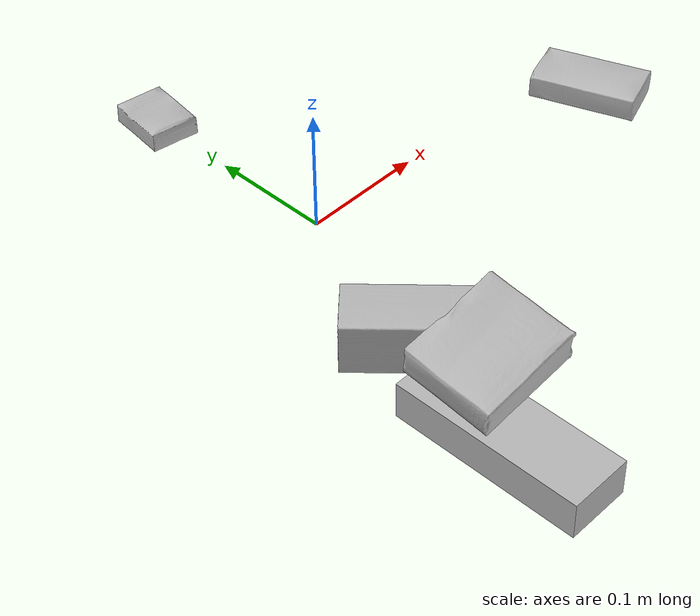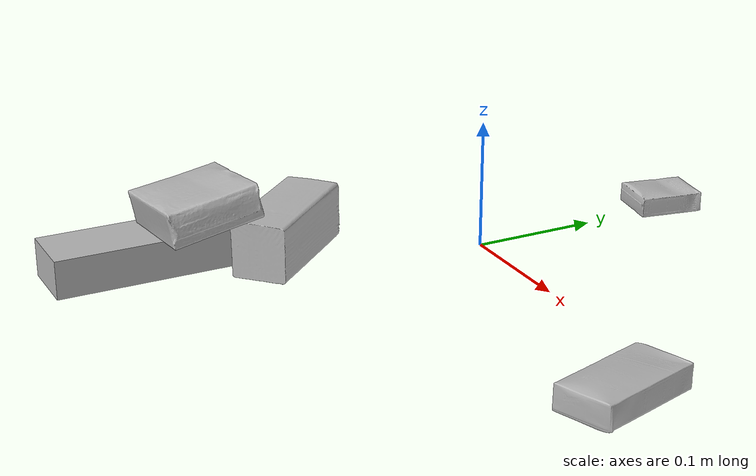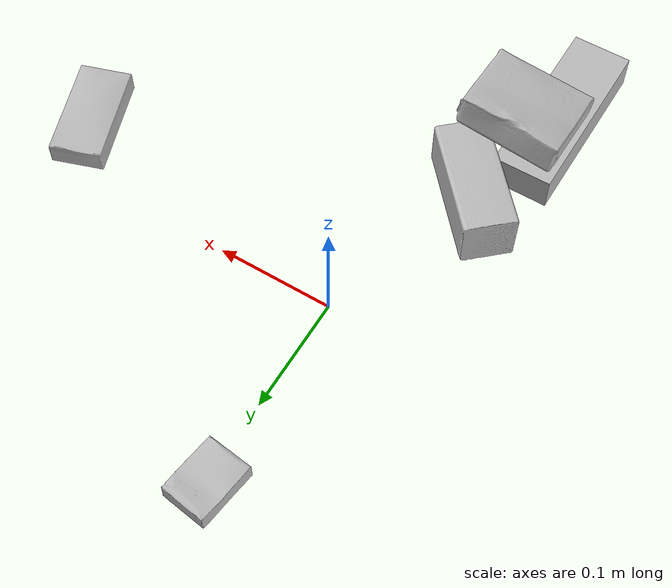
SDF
<sdf version="1.4">
  <world name="default">
    <light name="light1" type="point">
      <pose>0 0 1 0 0 0</pose>
      <diffuse>3 3 3 1</diffuse>
      <specular>3 3 3 1</specular>
    </light>
    <light name="light2" type="point">
      <pose>0 0.5 2 0 0 0</pose>
      <diffuse>1 1 1 1</diffuse>
      <specular>1 1 1 1</specular>
    </light>
    <light name="light3" type="point">
      <pose>0 0.5 2 0 0 0</pose>
      <diffuse>3 3 3 1</diffuse>
      <specular>3 3 3 1</specular>
    </light>
    <scene>
      <ambient>0.7 0.7 0.7</ambient>
    </scene>
    <model name="box1">
      <link name="link_box1">
        <collision name="default">
          <geometry>
            <mesh>
              <uri>model://sugar_box/collision_meshes/collision.obj</uri>
              <scale>0.5 0.5 0.5</scale>
            </mesh>
          </geometry>
          <surface>
            <friction>
              <ode>
                <mu>0.5</mu>
                <mu2>0.5</mu2>
              </ode>
            </friction>
          <contact>
        <ode>
            <max_vel>0</max_vel>
            <min_depth>0.0001</min_depth>
            <kp>1e8</kp>
        </ode>
    </contact></surface>
        </collision>
        <visual name="default">
          <geometry>
            <mesh>
              <uri>model://sugar_box/visual_meshes/visual.dae</uri>
              <scale>0.5 0.5 0.5</scale>
            </mesh>
          </geometry>
        </visual>
        <inertial>
          <mass>0.05016465485095978</mass>
          <pose>0.0005171863595023751 1.924554817378521e-05 -0.0001818240125430748 -0.00040462615463102695 0.0010506635220671036 0.0026153792546614123</pose>
          <inertia>
            <ixx>1.0449262e-05</ixx>
            <iyy>3.3774166e-05</iyy>
            <izz>4.0431696e-05</izz>
            <ixy>0</ixy>
            <ixz>0</ixz>
            <iyz>0</iyz>
          </inertia>
        </inertial>
      </link>
      <pose>0.26227959990501404 -0.0482139028608799 0.011399305425584316 0.0007753439793438909 -0.023432475727171685 -1.2511528990438212</pose>
    </model>
    <model name="box2">
      <link name="link_box2">
        <collision name="default">
          <geometry>
            <mesh>
              <uri>model://cracker_box/collision_meshes/collision.obj</uri>
              <scale>0.25 0.25 0.25</scale>
            </mesh>
          </geometry>
          <surface>
            <friction>
              <ode>
                <mu>0.5</mu>
                <mu2>0.5</mu2>
              </ode>
            </friction>
          <contact>
        <ode>
            <max_vel>0</max_vel>
            <min_depth>0.0001</min_depth>
            <kp>1e8</kp>
        </ode>
    </contact></surface>
        </collision>
        <visual name="default">
          <geometry>
            <mesh>
              <uri>model://cracker_box/visual_meshes/visual.dae</uri>
              <scale>0.25 0.25 0.25</scale>
            </mesh>
          </geometry>
        </visual>
        <inertial>
          <mass>0.05325852707028389</mass>
          <pose>0.0002366033149883151 6.358561950037256e-05 -0.0004257383698131889 -0.000316207624135088 -0.011106486806293444 0.0025467950014945295</pose>
          <inertia>
            <ixx>8.46662e-06</ixx>
            <iyy>1.3980052e-05</iyy>
            <izz>1.995082e-05</izz>
            <ixy>0</ixy>
            <ixz>0</ixz>
            <iyz>0</iyz>
          </inertia>
        </inertial>
      </link>
      <pose>-0.0034898249432444572 0.1730700433254242 0.009096028283238411 -0.014050577030836576 -0.005016663719638618 -1.7171412509025765</pose>
    </model>
    <model name="box3">
      <link name="link_box3">
        <collision name="default">
          <geometry>
            <mesh>
              <uri>model://wood_block/collision_meshes/collision.obj</uri>
              <scale>0.5 0.5 0.5</scale>
            </mesh>
          </geometry>
          <surface>
            <friction>
              <ode>
                <mu>0.5</mu>
                <mu2>0.5</mu2>
              </ode>
            </friction>
          <contact>
        <ode>
            <max_vel>0</max_vel>
            <min_depth>0.0001</min_depth>
            <kp>1e8</kp>
        </ode>
    </contact></surface>
        </collision>
        <visual name="default">
          <geometry>
            <mesh>
              <uri>model://wood_block/visual_meshes/visual.dae</uri>
              <scale>0.5 0.5 0.5</scale>
            </mesh>
          </geometry>
        </visual>
        <inertial>
          <mass>0.24977724254131317</mass>
          <pose>-2.9066577553749084e-06 -0.00028540476341731846 0.00013204291462898254 -0.05220975529066727 -0.005192695547513155 -0.006861377927637377</pose>
          <inertia>
            <ixx>8.355995e-05</ixx>
            <iyy>0.00026396586</iyy>
            <izz>0.00026297852</izz>
            <ixy>0</ixy>
            <ixz>0</ixz>
            <iyz>0</iyz>
          </inertia>
        </inertial>
      </link>
      <pose>-0.049112968146800995 -0.14265696704387665 0.022629305720329285 -0.005214504840319378 0.005718416730621027 2.306598201599399</pose>
    </model>
    <model name="box4">
      <link name="link_box4">
        <collision name="default">
          <geometry>
            <mesh>
              <uri>model://gelatin_box/collision_meshes/collision.obj</uri>
              <scale>1.0 1.0 1.0</scale>
            </mesh>
          </geometry>
          <surface>
            <friction>
              <ode>
                <mu>0.5</mu>
                <mu2>0.5</mu2>
              </ode>
            </friction>
          <contact>
        <ode>
            <max_vel>0</max_vel>
            <min_depth>0.0001</min_depth>
            <kp>1e8</kp>
        </ode>
    </contact></surface>
        </collision>
        <visual name="default">
          <geometry>
            <mesh>
              <uri>model://gelatin_box/visual_meshes/visual.dae</uri>
              <scale>1.0 1.0 1.0</scale>
            </mesh>
          </geometry>
        </visual>
        <inertial>
          <mass>0.142814502120018</mass>
          <pose>0.0004319618456065655 0.00011156871187267825 -0.0003640321083366871 -0.0010503719804291966 -0.004755819155973465 0.01644055947187314</pose>
          <inertia>
            <ixx>0.000100815385</ixx>
            <iyy>7.20119e-05</iyy>
            <izz>0.00015346348</izz>
            <ixy>0</ixy>
            <ixz>0</ixz>
            <iyz>0</iyz>
          </inertia>
        </inertial>
      </link>
      <pose>-0.05462627857923508 -0.212771475315094 0.053946353495121 -0.1168932161772204 -0.15936609996341816 1.5848120186958898</pose>
    </model>
    <model name="box5">
      <link name="link_box5">
        <collision name="default">
          <geometry>
            <mesh>
              <uri>model://jenga/collision_meshes/collision.obj</uri>
              <scale>1.0 1.0 1.0</scale>
            </mesh>
          </geometry>
          <surface>
            <friction>
              <ode>
                <mu>0.5</mu>
                <mu2>0.5</mu2>
              </ode>
            </friction>
          <contact>
        <ode>
            <max_vel>0</max_vel>
            <min_depth>0.0001</min_depth>
            <kp>1e8</kp>
        </ode>
    </contact></surface>
        </collision>
        <visual name="default">
          <geometry>
            <mesh>
              <uri>model://jenga/visual_meshes/visual.dae</uri>
              <scale>1.0 1.0 1.0</scale>
            </mesh>
          </geometry>
        </visual>
        <inertial>
          <mass>0.11303283274173737</mass>
          <pose>-2.502855807051674e-07 -0.00010250010382151231 -4.0923401684267446e-05 0.0 -7.342155186052628e-07 0.0</pose>
          <inertia>
            <ixx>3.127893e-05</ixx>
            <iyy>0.00021194515</iyy>
            <izz>0.00022626946</izz>
            <ixy>0</ixy>
            <ixz>0</ixz>
            <iyz>0</iyz>
          </inertia>
        </inertial>
      </link>
      <pose>-0.07540646940469742 -0.24804356694221497 0.015000001527369022 1.7776136727217322e-06 4.071707639967078e-07 1.5709500995482861</pose>
    </model>
  <physics type="ode">
      <max_contacts>50</max_contacts>
      <ode>
        <solver>
          <type>quick</type>
          <iters>75</iters>
        </solver>
        <constraints>
          <contact_max_correcting_vel>0</contact_max_correcting_vel>
          <contact_surface_layer>0</contact_surface_layer>
        </constraints>
      </ode>
    </physics></world>
</sdf>
